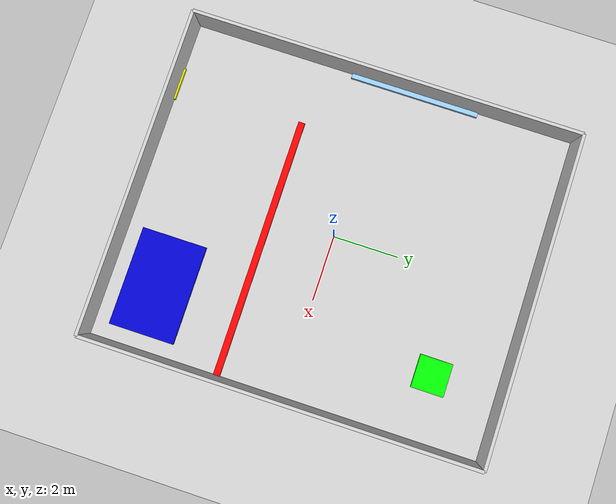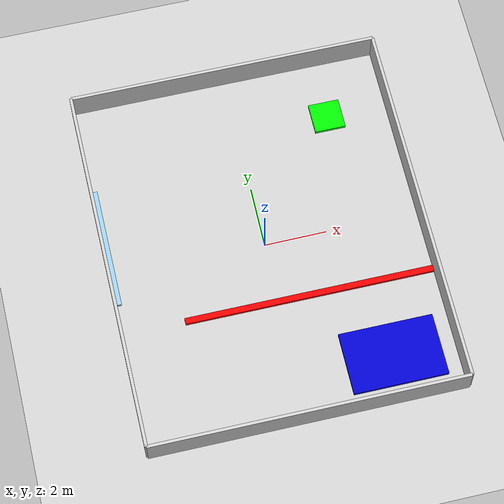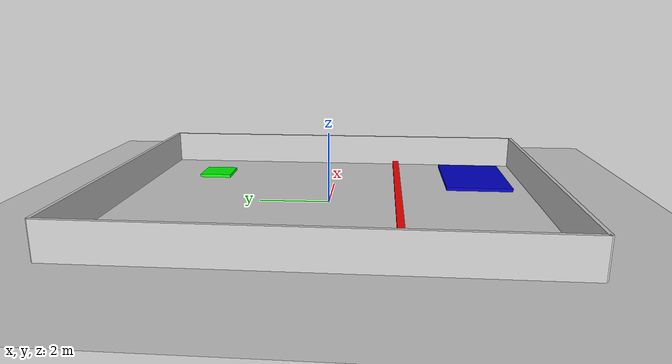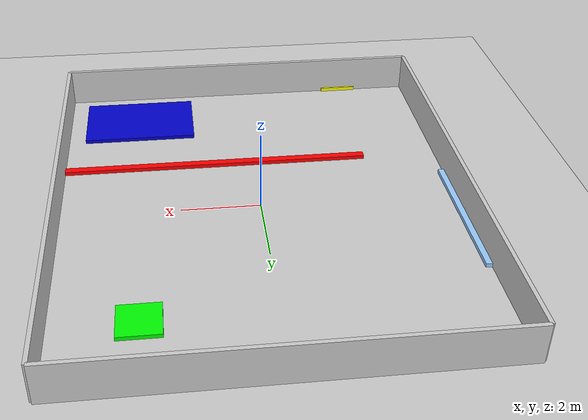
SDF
<?xml version="1.0" ?>
<sdf version="1.6">
  <world name="lab_world">
    <!-- Ground -->
    <include><uri>model://ground_plane</uri></include>
    <include><uri>model://sun</uri></include>

    <!-- Physics -->
    <physics type="ode">
      <max_step_size>0.001</max_step_size>
      <real_time_factor>1</real_time_factor>
      <real_time_update_rate>1000</real_time_update_rate>
      <ode>
        <solver><type>quick</type><iters>100</iters></solver>
      </ode>
    </physics>

    <!-- Outer Boundary (10m wide x 12m deep - Portrait) -->
    <!-- X: -5 to 5, Y: -6 to 6 -->
    <model name="lab_boundary">
      <static>true</static>
      <link name="link">
        <collision name="wall_n"><pose>0 6 0.5 0 0 0</pose><geometry><box><size>10 0.1 1</size></box></geometry></collision>
        <visual name="wall_n_v"><pose>0 6 0.5 0 0 0</pose><geometry><box><size>10 0.1 1</size></box></geometry><material><ambient>0.8 0.8 0.8 1</ambient></material></visual>

        <collision name="wall_s"><pose>0 -6 0.5 0 0 0</pose><geometry><box><size>10 0.1 1</size></box></geometry></collision>
        <visual name="wall_s_v"><pose>0 -6 0.5 0 0 0</pose><geometry><box><size>10 0.1 1</size></box></geometry><material><ambient>0.8 0.8 0.8 1</ambient></material></visual>

        <collision name="wall_e"><pose>5 0 0.5 0 0 0</pose><geometry><box><size>0.1 12 1</size></box></geometry></collision>
        <visual name="wall_e_v"><pose>5 0 0.5 0 0 0</pose><geometry><box><size>0.1 12 1</size></box></geometry><material><ambient>0.8 0.8 0.8 1</ambient></material></visual>

        <collision name="wall_w"><pose>-5 0 0.5 0 0 0</pose><geometry><box><size>0.1 12 1</size></box></geometry></collision>
        <visual name="wall_w_v"><pose>-5 0 0.5 0 0 0</pose><geometry><box><size>0.1 12 1</size></box></geometry><material><ambient>0.8 0.8 0.8 1</ambient></material></visual>
      </link>
    </model>

    <!-- Divider / Partition (Red) - Stick to Right Wall (East) -->
    <!-- Positioned to create a 8m vs 4m split (2/3 vs 1/3) -->
    <!-- Room total Y=12. Partition at Y=-2. -->
    <model name="divider_partition_red">
      <static>true</static>
      <!-- X: from -3 to 5 (length 8), Gap: -5 to -3 (2m) -->
      <pose>1 -2 0.05 0 0 0</pose>
      <link name="link">
        <collision name="col"><geometry><box><size>8 0.2 0.1</size></box></geometry></collision>
        <visual name="vis"><geometry><box><size>8 0.2 0.1</size></box></geometry><material><ambient>1 0 0 1</ambient></material></visual>
      </link>
    </model>

    <!-- Counter (Light Blue) - Stick to Left Wall (West) -->
    <model name="counter_light_blue">
      <static>true</static>
      <pose>-4.9 1 0.05 0 0 0</pose>
      <link name="link">
        <collision name="col"><geometry><box><size>0.2 4.0 0.1</size></box></geometry></collision>
        <visual name="vis"><geometry><box><size>0.2 4.0 0.1</size></box></geometry><material><ambient>0.6 0.8 1 1</ambient></material></visual>
      </link>
    </model>

    <!-- Station A Assembly (Green) - Top Right Area -->
    <model name="station_a_assembly">
      <static>true</static>
      <pose>3 4 0.05 0 0 0</pose>
      <link name="link">
        <collision name="col"><geometry><box><size>1.0 1.0 0.1</size></box></geometry></collision>
        <visual name="vis"><geometry><box><size>1.0 1.0 0.1</size></box></geometry><material><ambient>0 1 0 1</ambient></material></visual>
      </link>
    </model>

    <!-- Computer Table (Dark Blue) - Bottom Right Area -->
    <model name="computer_table">
      <static>true</static>
      <pose>3 -4.5 0.05 0 0 0</pose>
      <link name="link">
        <collision name="col"><geometry><box><size>3.0 2.0 0.1</size></box></geometry></collision>
        <visual name="vis"><geometry><box><size>3.0 2.0 0.1</size></box></geometry><material><ambient>0 0 0.8 1</ambient></material></visual>
      </link>
    </model>

    <!-- Storage (Yellow) - Bottom Left Area, Stick to South Wall -->
    <model name="storage_parts">
      <static>true</static>
      <pose>-3 -5.95 0.05 0 0 0</pose>
      <link name="link">
        <collision name="col"><geometry><box><size>1.0 0.1 0.1</size></box></geometry></collision>
        <visual name="vis"><geometry><box><size>1.0 0.1 0.1</size></box></geometry><material><ambient>1 1 0 1</ambient></material></visual>
      </link>
    </model>

    <!-- World Plugins -->
    <plugin name="gazebo_ros_init" filename="libgazebo_ros_init.so"/><plugin name="gazebo_ros_factory" filename="libgazebo_ros_factory.so"/>
  </world>
</sdf>
